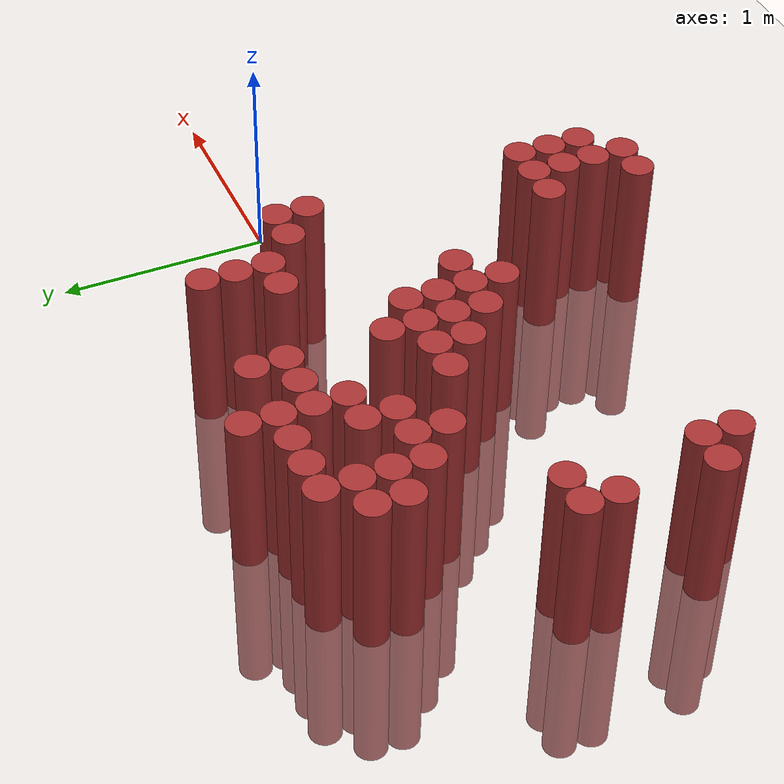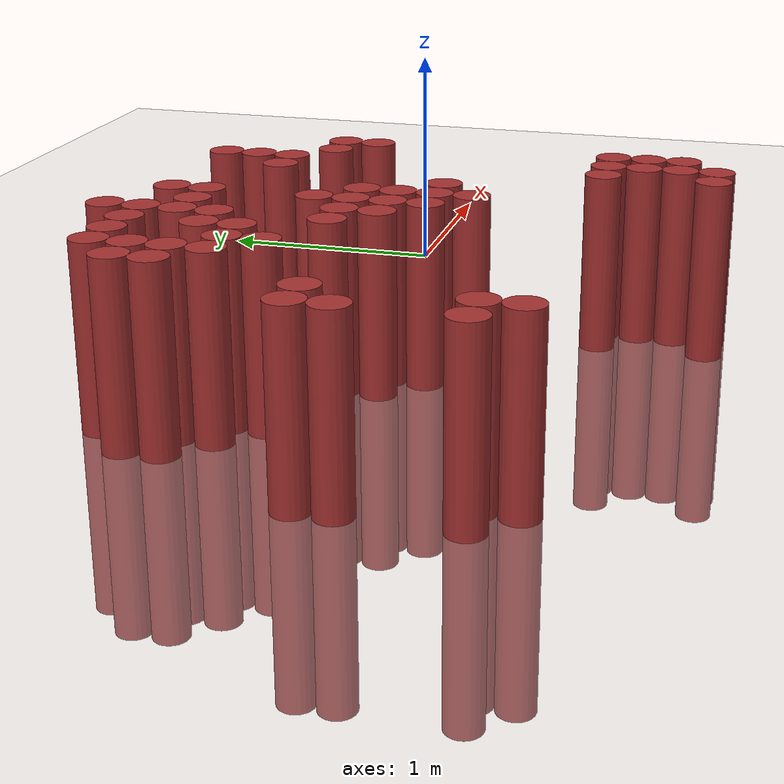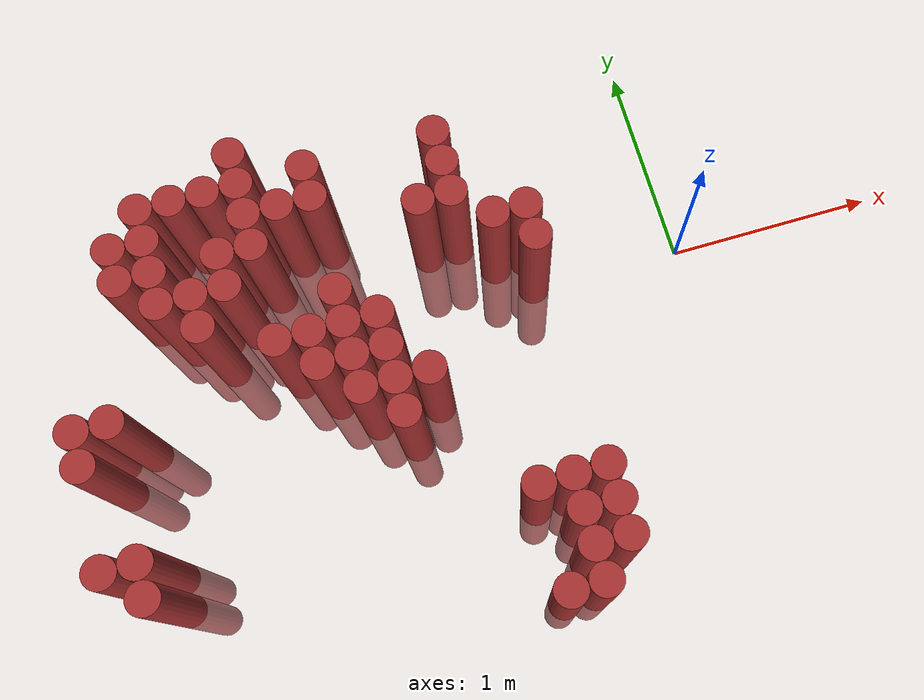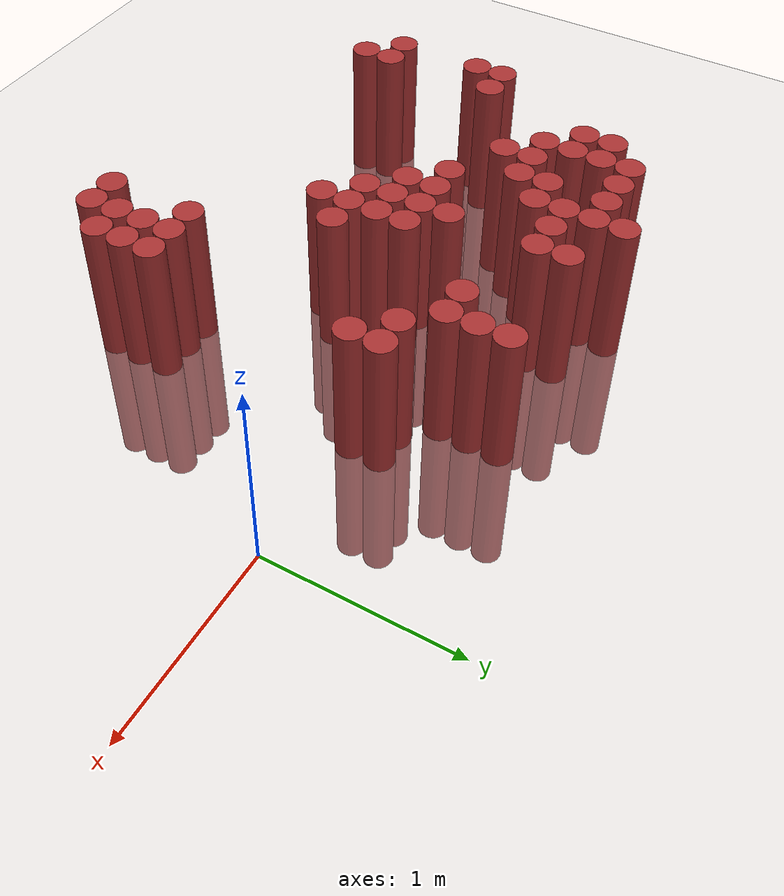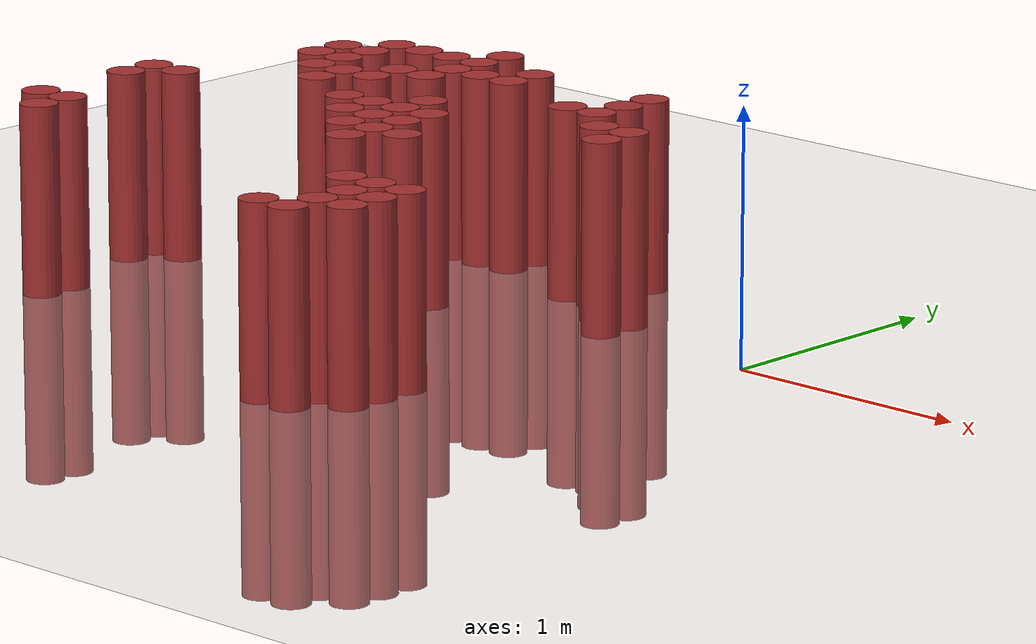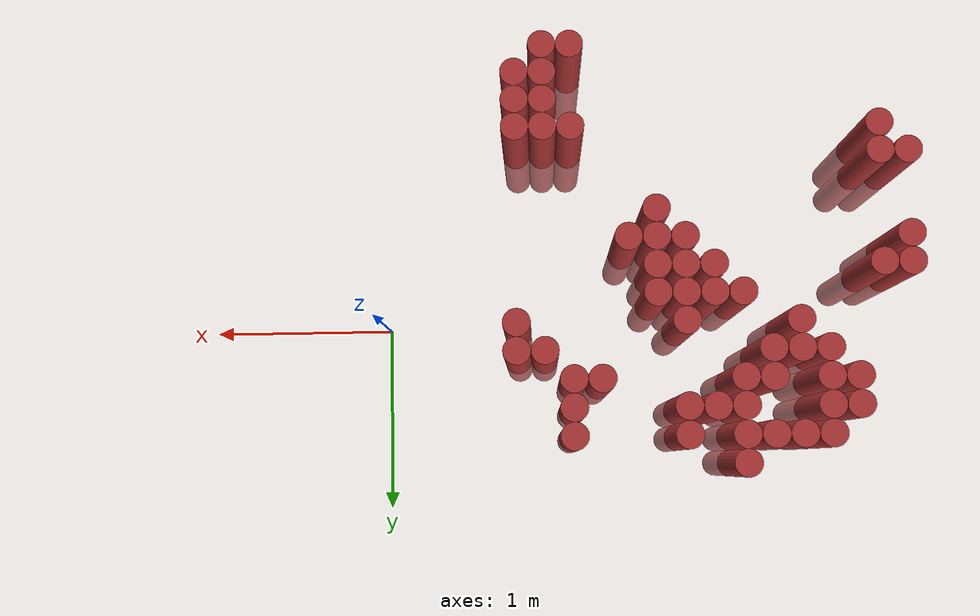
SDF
<sdf version="1.6">
 <world name="default">
  <model name="ground_plane">
   <static>1</static>
   <link name="link">
    <collision name="collision">
     <geometry><plane><normal>0 0 1</normal><size>100 100</size></plane></geometry>
     <surface><friction><ode><mu>100</mu><mu2>50</mu2></ode></friction></surface>
    </collision>
    <visual name="visual">
     <cast_shadows>0</cast_shadows>
     <geometry><plane><normal>0 0 1</normal><size>100 100</size></plane></geometry>
     <material>
      <script><uri>file://media/materials/scripts/gazebo.material</uri><name>Gazebo/Grey</name></script>
     </material>
    </visual>
   </link>
  </model>
  <model name="unit_cylinder_303">
   <static>1</static>
   <pose>-2.825000 -0.875000 0.000000 0.000000 0.000000 0.000000</pose>
   <link name="link">
    <inertial>
     <mass>1</mass>
     <inertia><ixx>0.145833</ixx><ixy>0</ixy><ixz>0</ixz><iyy>0.145833</iyy><iyz>0</iyz><izz>0.125</izz></inertia>
    </inertial>
    <collision name="collision">
     <geometry><cylinder><radius>0.075000</radius><length>1.5</length></cylinder></geometry>
    </collision>
    <visual name="visual">
     <geometry><cylinder><radius>0.075000</radius><length>1.5</length></cylinder></geometry>
     <material>
      <ambient>0.648000 0.192000 0.192000 1</ambient>
      <diffuse>0.648000 0.192000 0.192000 1</diffuse>
     </material>
     <material>
      <script><name>Gazebo/Grey</name><uri>file://media/materials/scripts/gazebo.material</uri></script>
     </material>
    </visual>
   </link>
  </model>
  <model name="unit_cylinder_304">
   <static>1</static>
   <pose>-2.825000 -0.425000 0.000000 0.000000 0.000000 0.000000</pose>
   <link name="link">
    <inertial>
     <mass>1</mass>
     <inertia><ixx>0.145833</ixx><ixy>0</ixy><ixz>0</ixz><iyy>0.145833</iyy><iyz>0</iyz><izz>0.125</izz></inertia>
    </inertial>
    <collision name="collision">
     <geometry><cylinder><radius>0.075000</radius><length>1.5</length></cylinder></geometry>
    </collision>
    <visual name="visual">
     <geometry><cylinder><radius>0.075000</radius><length>1.5</length></cylinder></geometry>
     <material>
      <ambient>0.648000 0.192000 0.192000 1</ambient>
      <diffuse>0.648000 0.192000 0.192000 1</diffuse>
     </material>
     <material>
      <script><name>Gazebo/Grey</name><uri>file://media/materials/scripts/gazebo.material</uri></script>
     </material>
    </visual>
   </link>
  </model>
  <model name="unit_cylinder_305">
   <static>1</static>
   <pose>-2.825000 -0.275000 0.000000 0.000000 0.000000 0.000000</pose>
   <link name="link">
    <inertial>
     <mass>1</mass>
     <inertia><ixx>0.145833</ixx><ixy>0</ixy><ixz>0</ixz><iyy>0.145833</iyy><iyz>0</iyz><izz>0.125</izz></inertia>
    </inertial>
    <collision name="collision">
     <geometry><cylinder><radius>0.075000</radius><length>1.5</length></cylinder></geometry>
    </collision>
    <visual name="visual">
     <geometry><cylinder><radius>0.075000</radius><length>1.5</length></cylinder></geometry>
     <material>
      <ambient>0.648000 0.192000 0.192000 1</ambient>
      <diffuse>0.648000 0.192000 0.192000 1</diffuse>
     </material>
     <material>
      <script><name>Gazebo/Grey</name><uri>file://media/materials/scripts/gazebo.material</uri></script>
     </material>
    </visual>
   </link>
  </model>
  <model name="unit_cylinder_314">
   <static>1</static>
   <pose>-2.675000 -1.025000 0.000000 0.000000 0.000000 0.000000</pose>
   <link name="link">
    <inertial>
     <mass>1</mass>
     <inertia><ixx>0.145833</ixx><ixy>0</ixy><ixz>0</ixz><iyy>0.145833</iyy><iyz>0</iyz><izz>0.125</izz></inertia>
    </inertial>
    <collision name="collision">
     <geometry><cylinder><radius>0.075000</radius><length>1.5</length></cylinder></geometry>
    </collision>
    <visual name="visual">
     <geometry><cylinder><radius>0.075000</radius><length>1.5</length></cylinder></geometry>
     <material>
      <ambient>0.648000 0.192000 0.192000 1</ambient>
      <diffuse>0.648000 0.192000 0.192000 1</diffuse>
     </material>
     <material>
      <script><name>Gazebo/Grey</name><uri>file://media/materials/scripts/gazebo.material</uri></script>
     </material>
    </visual>
   </link>
  </model>
  <model name="unit_cylinder_315">
   <static>1</static>
   <pose>-2.675000 -0.875000 0.000000 0.000000 0.000000 0.000000</pose>
   <link name="link">
    <inertial>
     <mass>1</mass>
     <inertia><ixx>0.145833</ixx><ixy>0</ixy><ixz>0</ixz><iyy>0.145833</iyy><iyz>0</iyz><izz>0.125</izz></inertia>
    </inertial>
    <collision name="collision">
     <geometry><cylinder><radius>0.075000</radius><length>1.5</length></cylinder></geometry>
    </collision>
    <visual name="visual">
     <geometry><cylinder><radius>0.075000</radius><length>1.5</length></cylinder></geometry>
     <material>
      <ambient>0.648000 0.192000 0.192000 1</ambient>
      <diffuse>0.648000 0.192000 0.192000 1</diffuse>
     </material>
     <material>
      <script><name>Gazebo/Grey</name><uri>file://media/materials/scripts/gazebo.material</uri></script>
     </material>
    </visual>
   </link>
  </model>
  <model name="unit_cylinder_316">
   <static>1</static>
   <pose>-2.675000 -0.275000 0.000000 0.000000 0.000000 0.000000</pose>
   <link name="link">
    <inertial>
     <mass>1</mass>
     <inertia><ixx>0.145833</ixx><ixy>0</ixy><ixz>0</ixz><iyy>0.145833</iyy><iyz>0</iyz><izz>0.125</izz></inertia>
    </inertial>
    <collision name="collision">
     <geometry><cylinder><radius>0.075000</radius><length>1.5</length></cylinder></geometry>
    </collision>
    <visual name="visual">
     <geometry><cylinder><radius>0.075000</radius><length>1.5</length></cylinder></geometry>
     <material>
      <ambient>0.648000 0.192000 0.192000 1</ambient>
      <diffuse>0.648000 0.192000 0.192000 1</diffuse>
     </material>
     <material>
      <script><name>Gazebo/Grey</name><uri>file://media/materials/scripts/gazebo.material</uri></script>
     </material>
    </visual>
   </link>
  </model>
  <model name="unit_cylinder_320">
   <static>1</static>
   <pose>-2.525000 0.325000 0.000000 0.000000 0.000000 0.000000</pose>
   <link name="link">
    <inertial>
     <mass>1</mass>
     <inertia><ixx>0.145833</ixx><ixy>0</ixy><ixz>0</ixz><iyy>0.145833</iyy><iyz>0</iyz><izz>0.125</izz></inertia>
    </inertial>
    <collision name="collision">
     <geometry><cylinder><radius>0.075000</radius><length>1.5</length></cylinder></geometry>
    </collision>
    <visual name="visual">
     <geometry><cylinder><radius>0.075000</radius><length>1.5</length></cylinder></geometry>
     <material>
      <ambient>0.648000 0.192000 0.192000 1</ambient>
      <diffuse>0.648000 0.192000 0.192000 1</diffuse>
     </material>
     <material>
      <script><name>Gazebo/Grey</name><uri>file://media/materials/scripts/gazebo.material</uri></script>
     </material>
    </visual>
   </link>
  </model>
  <model name="unit_cylinder_321">
   <static>1</static>
   <pose>-2.525000 0.475000 0.000000 0.000000 0.000000 0.000000</pose>
   <link name="link">
    <inertial>
     <mass>1</mass>
     <inertia><ixx>0.145833</ixx><ixy>0</ixy><ixz>0</ixz><iyy>0.145833</iyy><iyz>0</iyz><izz>0.125</izz></inertia>
    </inertial>
    <collision name="collision">
     <geometry><cylinder><radius>0.075000</radius><length>1.5</length></cylinder></geometry>
    </collision>
    <visual name="visual">
     <geometry><cylinder><radius>0.075000</radius><length>1.5</length></cylinder></geometry>
     <material>
      <ambient>0.648000 0.192000 0.192000 1</ambient>
      <diffuse>0.648000 0.192000 0.192000 1</diffuse>
     </material>
     <material>
      <script><name>Gazebo/Grey</name><uri>file://media/materials/scripts/gazebo.material</uri></script>
     </material>
    </visual>
   </link>
  </model>
  <model name="unit_cylinder_324">
   <static>1</static>
   <pose>-2.375000 0.175000 0.000000 0.000000 0.000000 0.000000</pose>
   <link name="link">
    <inertial>
     <mass>1</mass>
     <inertia><ixx>0.145833</ixx><ixy>0</ixy><ixz>0</ixz><iyy>0.145833</iyy><iyz>0</iyz><izz>0.125</izz></inertia>
    </inertial>
    <collision name="collision">
     <geometry><cylinder><radius>0.075000</radius><length>1.5</length></cylinder></geometry>
    </collision>
    <visual name="visual">
     <geometry><cylinder><radius>0.075000</radius><length>1.5</length></cylinder></geometry>
     <material>
      <ambient>0.648000 0.192000 0.192000 1</ambient>
      <diffuse>0.648000 0.192000 0.192000 1</diffuse>
     </material>
     <material>
      <script><name>Gazebo/Grey</name><uri>file://media/materials/scripts/gazebo.material</uri></script>
     </material>
    </visual>
   </link>
  </model>
  <model name="unit_cylinder_325">
   <static>1</static>
   <pose>-2.375000 0.325000 0.000000 0.000000 0.000000 0.000000</pose>
   <link name="link">
    <inertial>
     <mass>1</mass>
     <inertia><ixx>0.145833</ixx><ixy>0</ixy><ixz>0</ixz><iyy>0.145833</iyy><iyz>0</iyz><izz>0.125</izz></inertia>
    </inertial>
    <collision name="collision">
     <geometry><cylinder><radius>0.075000</radius><length>1.5</length></cylinder></geometry>
    </collision>
    <visual name="visual">
     <geometry><cylinder><radius>0.075000</radius><length>1.5</length></cylinder></geometry>
     <material>
      <ambient>0.648000 0.192000 0.192000 1</ambient>
      <diffuse>0.648000 0.192000 0.192000 1</diffuse>
     </material>
     <material>
      <script><name>Gazebo/Grey</name><uri>file://media/materials/scripts/gazebo.material</uri></script>
     </material>
    </visual>
   </link>
  </model>
  <model name="unit_cylinder_326">
   <static>1</static>
   <pose>-2.375000 0.475000 0.000000 0.000000 0.000000 0.000000</pose>
   <link name="link">
    <inertial>
     <mass>1</mass>
     <inertia><ixx>0.145833</ixx><ixy>0</ixy><ixz>0</ixz><iyy>0.145833</iyy><iyz>0</iyz><izz>0.125</izz></inertia>
    </inertial>
    <collision name="collision">
     <geometry><cylinder><radius>0.075000</radius><length>1.5</length></cylinder></geometry>
    </collision>
    <visual name="visual">
     <geometry><cylinder><radius>0.075000</radius><length>1.5</length></cylinder></geometry>
     <material>
      <ambient>0.648000 0.192000 0.192000 1</ambient>
      <diffuse>0.648000 0.192000 0.192000 1</diffuse>
     </material>
     <material>
      <script><name>Gazebo/Grey</name><uri>file://media/materials/scripts/gazebo.material</uri></script>
     </material>
    </visual>
   </link>
  </model>
  <model name="unit_cylinder_327">
   <static>1</static>
   <pose>-2.375000 0.625000 0.000000 0.000000 0.000000 0.000000</pose>
   <link name="link">
    <inertial>
     <mass>1</mass>
     <inertia><ixx>0.145833</ixx><ixy>0</ixy><ixz>0</ixz><iyy>0.145833</iyy><iyz>0</iyz><izz>0.125</izz></inertia>
    </inertial>
    <collision name="collision">
     <geometry><cylinder><radius>0.075000</radius><length>1.5</length></cylinder></geometry>
    </collision>
    <visual name="visual">
     <geometry><cylinder><radius>0.075000</radius><length>1.5</length></cylinder></geometry>
     <material>
      <ambient>0.648000 0.192000 0.192000 1</ambient>
      <diffuse>0.648000 0.192000 0.192000 1</diffuse>
     </material>
     <material>
      <script><name>Gazebo/Grey</name><uri>file://media/materials/scripts/gazebo.material</uri></script>
     </material>
    </visual>
   </link>
  </model>
  <model name="unit_cylinder_334">
   <static>1</static>
   <pose>-2.225000 0.025000 0.000000 0.000000 0.000000 0.000000</pose>
   <link name="link">
    <inertial>
     <mass>1</mass>
     <inertia><ixx>0.145833</ixx><ixy>0</ixy><ixz>0</ixz><iyy>0.145833</iyy><iyz>0</iyz><izz>0.125</izz></inertia>
    </inertial>
    <collision name="collision">
     <geometry><cylinder><radius>0.075000</radius><length>1.5</length></cylinder></geometry>
    </collision>
    <visual name="visual">
     <geometry><cylinder><radius>0.075000</radius><length>1.5</length></cylinder></geometry>
     <material>
      <ambient>0.648000 0.192000 0.192000 1</ambient>
      <diffuse>0.648000 0.192000 0.192000 1</diffuse>
     </material>
     <material>
      <script><name>Gazebo/Grey</name><uri>file://media/materials/scripts/gazebo.material</uri></script>
     </material>
    </visual>
   </link>
  </model>
  <model name="unit_cylinder_335">
   <static>1</static>
   <pose>-2.225000 0.175000 0.000000 0.000000 0.000000 0.000000</pose>
   <link name="link">
    <inertial>
     <mass>1</mass>
     <inertia><ixx>0.145833</ixx><ixy>0</ixy><ixz>0</ixz><iyy>0.145833</iyy><iyz>0</iyz><izz>0.125</izz></inertia>
    </inertial>
    <collision name="collision">
     <geometry><cylinder><radius>0.075000</radius><length>1.5</length></cylinder></geometry>
    </collision>
    <visual name="visual">
     <geometry><cylinder><radius>0.075000</radius><length>1.5</length></cylinder></geometry>
     <material>
      <ambient>0.648000 0.192000 0.192000 1</ambient>
      <diffuse>0.648000 0.192000 0.192000 1</diffuse>
     </material>
     <material>
      <script><name>Gazebo/Grey</name><uri>file://media/materials/scripts/gazebo.material</uri></script>
     </material>
    </visual>
   </link>
  </model>
  <model name="unit_cylinder_336">
   <static>1</static>
   <pose>-2.225000 0.625000 0.000000 0.000000 0.000000 0.000000</pose>
   <link name="link">
    <inertial>
     <mass>1</mass>
     <inertia><ixx>0.145833</ixx><ixy>0</ixy><ixz>0</ixz><iyy>0.145833</iyy><iyz>0</iyz><izz>0.125</izz></inertia>
    </inertial>
    <collision name="collision">
     <geometry><cylinder><radius>0.075000</radius><length>1.5</length></cylinder></geometry>
    </collision>
    <visual name="visual">
     <geometry><cylinder><radius>0.075000</radius><length>1.5</length></cylinder></geometry>
     <material>
      <ambient>0.648000 0.192000 0.192000 1</ambient>
      <diffuse>0.648000 0.192000 0.192000 1</diffuse>
     </material>
     <material>
      <script><name>Gazebo/Grey</name><uri>file://media/materials/scripts/gazebo.material</uri></script>
     </material>
    </visual>
   </link>
  </model>
  <model name="unit_cylinder_342">
   <static>1</static>
   <pose>-2.075000 0.175000 0.000000 0.000000 0.000000 0.000000</pose>
   <link name="link">
    <inertial>
     <mass>1</mass>
     <inertia><ixx>0.145833</ixx><ixy>0</ixy><ixz>0</ixz><iyy>0.145833</iyy><iyz>0</iyz><izz>0.125</izz></inertia>
    </inertial>
    <collision name="collision">
     <geometry><cylinder><radius>0.075000</radius><length>1.5</length></cylinder></geometry>
    </collision>
    <visual name="visual">
     <geometry><cylinder><radius>0.075000</radius><length>1.5</length></cylinder></geometry>
     <material>
      <ambient>0.648000 0.192000 0.192000 1</ambient>
      <diffuse>0.648000 0.192000 0.192000 1</diffuse>
     </material>
     <material>
      <script><name>Gazebo/Grey</name><uri>file://media/materials/scripts/gazebo.material</uri></script>
     </material>
    </visual>
   </link>
  </model>
  <model name="unit_cylinder_343">
   <static>1</static>
   <pose>-2.075000 0.325000 0.000000 0.000000 0.000000 0.000000</pose>
   <link name="link">
    <inertial>
     <mass>1</mass>
     <inertia><ixx>0.145833</ixx><ixy>0</ixy><ixz>0</ixz><iyy>0.145833</iyy><iyz>0</iyz><izz>0.125</izz></inertia>
    </inertial>
    <collision name="collision">
     <geometry><cylinder><radius>0.075000</radius><length>1.5</length></cylinder></geometry>
    </collision>
    <visual name="visual">
     <geometry><cylinder><radius>0.075000</radius><length>1.5</length></cylinder></geometry>
     <material>
      <ambient>0.648000 0.192000 0.192000 1</ambient>
      <diffuse>0.648000 0.192000 0.192000 1</diffuse>
     </material>
     <material>
      <script><name>Gazebo/Grey</name><uri>file://media/materials/scripts/gazebo.material</uri></script>
     </material>
    </visual>
   </link>
  </model>
  <model name="unit_cylinder_344">
   <static>1</static>
   <pose>-2.075000 0.625000 0.000000 0.000000 0.000000 0.000000</pose>
   <link name="link">
    <inertial>
     <mass>1</mass>
     <inertia><ixx>0.145833</ixx><ixy>0</ixy><ixz>0</ixz><iyy>0.145833</iyy><iyz>0</iyz><izz>0.125</izz></inertia>
    </inertial>
    <collision name="collision">
     <geometry><cylinder><radius>0.075000</radius><length>1.5</length></cylinder></geometry>
    </collision>
    <visual name="visual">
     <geometry><cylinder><radius>0.075000</radius><length>1.5</length></cylinder></geometry>
     <material>
      <ambient>0.648000 0.192000 0.192000 1</ambient>
      <diffuse>0.648000 0.192000 0.192000 1</diffuse>
     </material>
     <material>
      <script><name>Gazebo/Grey</name><uri>file://media/materials/scripts/gazebo.material</uri></script>
     </material>
    </visual>
   </link>
  </model>
  <model name="unit_cylinder_352">
   <static>1</static>
   <pose>-1.925000 -0.125000 0.000000 0.000000 0.000000 0.000000</pose>
   <link name="link">
    <inertial>
     <mass>1</mass>
     <inertia><ixx>0.145833</ixx><ixy>0</ixy><ixz>0</ixz><iyy>0.145833</iyy><iyz>0</iyz><izz>0.125</izz></inertia>
    </inertial>
    <collision name="collision">
     <geometry><cylinder><radius>0.075000</radius><length>1.5</length></cylinder></geometry>
    </collision>
    <visual name="visual">
     <geometry><cylinder><radius>0.075000</radius><length>1.5</length></cylinder></geometry>
     <material>
      <ambient>0.648000 0.192000 0.192000 1</ambient>
      <diffuse>0.648000 0.192000 0.192000 1</diffuse>
     </material>
     <material>
      <script><name>Gazebo/Grey</name><uri>file://media/materials/scripts/gazebo.material</uri></script>
     </material>
    </visual>
   </link>
  </model>
  <model name="unit_cylinder_353">
   <static>1</static>
   <pose>-1.925000 0.325000 0.000000 0.000000 0.000000 0.000000</pose>
   <link name="link">
    <inertial>
     <mass>1</mass>
     <inertia><ixx>0.145833</ixx><ixy>0</ixy><ixz>0</ixz><iyy>0.145833</iyy><iyz>0</iyz><izz>0.125</izz></inertia>
    </inertial>
    <collision name="collision">
     <geometry><cylinder><radius>0.075000</radius><length>1.5</length></cylinder></geometry>
    </collision>
    <visual name="visual">
     <geometry><cylinder><radius>0.075000</radius><length>1.5</length></cylinder></geometry>
     <material>
      <ambient>0.648000 0.192000 0.192000 1</ambient>
      <diffuse>0.648000 0.192000 0.192000 1</diffuse>
     </material>
     <material>
      <script><name>Gazebo/Grey</name><uri>file://media/materials/scripts/gazebo.material</uri></script>
     </material>
    </visual>
   </link>
  </model>
  <model name="unit_cylinder_354">
   <static>1</static>
   <pose>-1.925000 0.475000 0.000000 0.000000 0.000000 0.000000</pose>
   <link name="link">
    <inertial>
     <mass>1</mass>
     <inertia><ixx>0.145833</ixx><ixy>0</ixy><ixz>0</ixz><iyy>0.145833</iyy><iyz>0</iyz><izz>0.125</izz></inertia>
    </inertial>
    <collision name="collision">
     <geometry><cylinder><radius>0.075000</radius><length>1.5</length></cylinder></geometry>
    </collision>
    <visual name="visual">
     <geometry><cylinder><radius>0.075000</radius><length>1.5</length></cylinder></geometry>
     <material>
      <ambient>0.648000 0.192000 0.192000 1</ambient>
      <diffuse>0.648000 0.192000 0.192000 1</diffuse>
     </material>
     <material>
      <script><name>Gazebo/Grey</name><uri>file://media/materials/scripts/gazebo.material</uri></script>
     </material>
    </visual>
   </link>
  </model>
  <model name="unit_cylinder_355">
   <static>1</static>
   <pose>-1.925000 0.625000 0.000000 0.000000 0.000000 0.000000</pose>
   <link name="link">
    <inertial>
     <mass>1</mass>
     <inertia><ixx>0.145833</ixx><ixy>0</ixy><ixz>0</ixz><iyy>0.145833</iyy><iyz>0</iyz><izz>0.125</izz></inertia>
    </inertial>
    <collision name="collision">
     <geometry><cylinder><radius>0.075000</radius><length>1.5</length></cylinder></geometry>
    </collision>
    <visual name="visual">
     <geometry><cylinder><radius>0.075000</radius><length>1.5</length></cylinder></geometry>
     <material>
      <ambient>0.648000 0.192000 0.192000 1</ambient>
      <diffuse>0.648000 0.192000 0.192000 1</diffuse>
     </material>
     <material>
      <script><name>Gazebo/Grey</name><uri>file://media/materials/scripts/gazebo.material</uri></script>
     </material>
    </visual>
   </link>
  </model>
  <model name="unit_cylinder_356">
   <static>1</static>
   <pose>-1.925000 0.775000 0.000000 0.000000 0.000000 0.000000</pose>
   <link name="link">
    <inertial>
     <mass>1</mass>
     <inertia><ixx>0.145833</ixx><ixy>0</ixy><ixz>0</ixz><iyy>0.145833</iyy><iyz>0</iyz><izz>0.125</izz></inertia>
    </inertial>
    <collision name="collision">
     <geometry><cylinder><radius>0.075000</radius><length>1.5</length></cylinder></geometry>
    </collision>
    <visual name="visual">
     <geometry><cylinder><radius>0.075000</radius><length>1.5</length></cylinder></geometry>
     <material>
      <ambient>0.648000 0.192000 0.192000 1</ambient>
      <diffuse>0.648000 0.192000 0.192000 1</diffuse>
     </material>
     <material>
      <script><name>Gazebo/Grey</name><uri>file://media/materials/scripts/gazebo.material</uri></script>
     </material>
    </visual>
   </link>
  </model>
  <model name="unit_cylinder_361">
   <static>1</static>
   <pose>-1.775000 -0.275000 0.000000 0.000000 0.000000 0.000000</pose>
   <link name="link">
    <inertial>
     <mass>1</mass>
     <inertia><ixx>0.145833</ixx><ixy>0</ixy><ixz>0</ixz><iyy>0.145833</iyy><iyz>0</iyz><izz>0.125</izz></inertia>
    </inertial>
    <collision name="collision">
     <geometry><cylinder><radius>0.075000</radius><length>1.5</length></cylinder></geometry>
    </collision>
    <visual name="visual">
     <geometry><cylinder><radius>0.075000</radius><length>1.5</length></cylinder></geometry>
     <material>
      <ambient>0.648000 0.192000 0.192000 1</ambient>
      <diffuse>0.648000 0.192000 0.192000 1</diffuse>
     </material>
     <material>
      <script><name>Gazebo/Grey</name><uri>file://media/materials/scripts/gazebo.material</uri></script>
     </material>
    </visual>
   </link>
  </model>
  <model name="unit_cylinder_362">
   <static>1</static>
   <pose>-1.775000 -0.125000 0.000000 0.000000 0.000000 0.000000</pose>
   <link name="link">
    <inertial>
     <mass>1</mass>
     <inertia><ixx>0.145833</ixx><ixy>0</ixy><ixz>0</ixz><iyy>0.145833</iyy><iyz>0</iyz><izz>0.125</izz></inertia>
    </inertial>
    <collision name="collision">
     <geometry><cylinder><radius>0.075000</radius><length>1.5</length></cylinder></geometry>
    </collision>
    <visual name="visual">
     <geometry><cylinder><radius>0.075000</radius><length>1.5</length></cylinder></geometry>
     <material>
      <ambient>0.648000 0.192000 0.192000 1</ambient>
      <diffuse>0.648000 0.192000 0.192000 1</diffuse>
     </material>
     <material>
      <script><name>Gazebo/Grey</name><uri>file://media/materials/scripts/gazebo.material</uri></script>
     </material>
    </visual>
   </link>
  </model>
  <model name="unit_cylinder_363">
   <static>1</static>
   <pose>-1.775000 0.475000 0.000000 0.000000 0.000000 0.000000</pose>
   <link name="link">
    <inertial>
     <mass>1</mass>
     <inertia><ixx>0.145833</ixx><ixy>0</ixy><ixz>0</ixz><iyy>0.145833</iyy><iyz>0</iyz><izz>0.125</izz></inertia>
    </inertial>
    <collision name="collision">
     <geometry><cylinder><radius>0.075000</radius><length>1.5</length></cylinder></geometry>
    </collision>
    <visual name="visual">
     <geometry><cylinder><radius>0.075000</radius><length>1.5</length></cylinder></geometry>
     <material>
      <ambient>0.648000 0.192000 0.192000 1</ambient>
      <diffuse>0.648000 0.192000 0.192000 1</diffuse>
     </material>
     <material>
      <script><name>Gazebo/Grey</name><uri>file://media/materials/scripts/gazebo.material</uri></script>
     </material>
    </visual>
   </link>
  </model>
  <model name="unit_cylinder_369">
   <static>1</static>
   <pose>-1.625000 -0.425000 0.000000 0.000000 0.000000 0.000000</pose>
   <link name="link">
    <inertial>
     <mass>1</mass>
     <inertia><ixx>0.145833</ixx><ixy>0</ixy><ixz>0</ixz><iyy>0.145833</iyy><iyz>0</iyz><izz>0.125</izz></inertia>
    </inertial>
    <collision name="collision">
     <geometry><cylinder><radius>0.075000</radius><length>1.5</length></cylinder></geometry>
    </collision>
    <visual name="visual">
     <geometry><cylinder><radius>0.075000</radius><length>1.5</length></cylinder></geometry>
     <material>
      <ambient>0.648000 0.192000 0.192000 1</ambient>
      <diffuse>0.648000 0.192000 0.192000 1</diffuse>
     </material>
     <material>
      <script><name>Gazebo/Grey</name><uri>file://media/materials/scripts/gazebo.material</uri></script>
     </material>
    </visual>
   </link>
  </model>
  <model name="unit_cylinder_370">
   <static>1</static>
   <pose>-1.625000 -0.275000 0.000000 0.000000 0.000000 0.000000</pose>
   <link name="link">
    <inertial>
     <mass>1</mass>
     <inertia><ixx>0.145833</ixx><ixy>0</ixy><ixz>0</ixz><iyy>0.145833</iyy><iyz>0</iyz><izz>0.125</izz></inertia>
    </inertial>
    <collision name="collision">
     <geometry><cylinder><radius>0.075000</radius><length>1.5</length></cylinder></geometry>
    </collision>
    <visual name="visual">
     <geometry><cylinder><radius>0.075000</radius><length>1.5</length></cylinder></geometry>
     <material>
      <ambient>0.648000 0.192000 0.192000 1</ambient>
      <diffuse>0.648000 0.192000 0.192000 1</diffuse>
     </material>
     <material>
      <script><name>Gazebo/Grey</name><uri>file://media/materials/scripts/gazebo.material</uri></script>
     </material>
    </visual>
   </link>
  </model>
  <model name="unit_cylinder_371">
   <static>1</static>
   <pose>-1.625000 -0.125000 0.000000 0.000000 0.000000 0.000000</pose>
   <link name="link">
    <inertial>
     <mass>1</mass>
     <inertia><ixx>0.145833</ixx><ixy>0</ixy><ixz>0</ixz><iyy>0.145833</iyy><iyz>0</iyz><izz>0.125</izz></inertia>
    </inertial>
    <collision name="collision">
     <geometry><cylinder><radius>0.075000</radius><length>1.5</length></cylinder></geometry>
    </collision>
    <visual name="visual">
     <geometry><cylinder><radius>0.075000</radius><length>1.5</length></cylinder></geometry>
     <material>
      <ambient>0.648000 0.192000 0.192000 1</ambient>
      <diffuse>0.648000 0.192000 0.192000 1</diffuse>
     </material>
     <material>
      <script><name>Gazebo/Grey</name><uri>file://media/materials/scripts/gazebo.material</uri></script>
     </material>
    </visual>
   </link>
  </model>
  <model name="unit_cylinder_372">
   <static>1</static>
   <pose>-1.625000 0.025000 0.000000 0.000000 0.000000 0.000000</pose>
   <link name="link">
    <inertial>
     <mass>1</mass>
     <inertia><ixx>0.145833</ixx><ixy>0</ixy><ixz>0</ixz><iyy>0.145833</iyy><iyz>0</iyz><izz>0.125</izz></inertia>
    </inertial>
    <collision name="collision">
     <geometry><cylinder><radius>0.075000</radius><length>1.5</length></cylinder></geometry>
    </collision>
    <visual name="visual">
     <geometry><cylinder><radius>0.075000</radius><length>1.5</length></cylinder></geometry>
     <material>
      <ambient>0.648000 0.192000 0.192000 1</ambient>
      <diffuse>0.648000 0.192000 0.192000 1</diffuse>
     </material>
     <material>
      <script><name>Gazebo/Grey</name><uri>file://media/materials/scripts/gazebo.material</uri></script>
     </material>
    </visual>
   </link>
  </model>
  <model name="unit_cylinder_373">
   <static>1</static>
   <pose>-1.625000 0.475000 0.000000 0.000000 0.000000 0.000000</pose>
   <link name="link">
    <inertial>
     <mass>1</mass>
     <inertia><ixx>0.145833</ixx><ixy>0</ixy><ixz>0</ixz><iyy>0.145833</iyy><iyz>0</iyz><izz>0.125</izz></inertia>
    </inertial>
    <collision name="collision">
     <geometry><cylinder><radius>0.075000</radius><length>1.5</length></cylinder></geometry>
    </collision>
    <visual name="visual">
     <geometry><cylinder><radius>0.075000</radius><length>1.5</length></cylinder></geometry>
     <material>
      <ambient>0.648000 0.192000 0.192000 1</ambient>
      <diffuse>0.648000 0.192000 0.192000 1</diffuse>
     </material>
     <material>
      <script><name>Gazebo/Grey</name><uri>file://media/materials/scripts/gazebo.material</uri></script>
     </material>
    </visual>
   </link>
  </model>
  <model name="unit_cylinder_374">
   <static>1</static>
   <pose>-1.625000 0.625000 0.000000 0.000000 0.000000 0.000000</pose>
   <link name="link">
    <inertial>
     <mass>1</mass>
     <inertia><ixx>0.145833</ixx><ixy>0</ixy><ixz>0</ixz><iyy>0.145833</iyy><iyz>0</iyz><izz>0.125</izz></inertia>
    </inertial>
    <collision name="collision">
     <geometry><cylinder><radius>0.075000</radius><length>1.5</length></cylinder></geometry>
    </collision>
    <visual name="visual">
     <geometry><cylinder><radius>0.075000</radius><length>1.5</length></cylinder></geometry>
     <material>
      <ambient>0.648000 0.192000 0.192000 1</ambient>
      <diffuse>0.648000 0.192000 0.192000 1</diffuse>
     </material>
     <material>
      <script><name>Gazebo/Grey</name><uri>file://media/materials/scripts/gazebo.material</uri></script>
     </material>
    </visual>
   </link>
  </model>
  <model name="unit_cylinder_378">
   <static>1</static>
   <pose>-1.475000 -0.575000 0.000000 0.000000 0.000000 0.000000</pose>
   <link name="link">
    <inertial>
     <mass>1</mass>
     <inertia><ixx>0.145833</ixx><ixy>0</ixy><ixz>0</ixz><iyy>0.145833</iyy><iyz>0</iyz><izz>0.125</izz></inertia>
    </inertial>
    <collision name="collision">
     <geometry><cylinder><radius>0.075000</radius><length>1.5</length></cylinder></geometry>
    </collision>
    <visual name="visual">
     <geometry><cylinder><radius>0.075000</radius><length>1.5</length></cylinder></geometry>
     <material>
      <ambient>0.648000 0.192000 0.192000 1</ambient>
      <diffuse>0.648000 0.192000 0.192000 1</diffuse>
     </material>
     <material>
      <script><name>Gazebo/Grey</name><uri>file://media/materials/scripts/gazebo.material</uri></script>
     </material>
    </visual>
   </link>
  </model>
  <model name="unit_cylinder_379">
   <static>1</static>
   <pose>-1.475000 -0.425000 0.000000 0.000000 0.000000 0.000000</pose>
   <link name="link">
    <inertial>
     <mass>1</mass>
     <inertia><ixx>0.145833</ixx><ixy>0</ixy><ixz>0</ixz><iyy>0.145833</iyy><iyz>0</iyz><izz>0.125</izz></inertia>
    </inertial>
    <collision name="collision">
     <geometry><cylinder><radius>0.075000</radius><length>1.5</length></cylinder></geometry>
    </collision>
    <visual name="visual">
     <geometry><cylinder><radius>0.075000</radius><length>1.5</length></cylinder></geometry>
     <material>
      <ambient>0.648000 0.192000 0.192000 1</ambient>
      <diffuse>0.648000 0.192000 0.192000 1</diffuse>
     </material>
     <material>
      <script><name>Gazebo/Grey</name><uri>file://media/materials/scripts/gazebo.material</uri></script>
     </material>
    </visual>
   </link>
  </model>
  <model name="unit_cylinder_380">
   <static>1</static>
   <pose>-1.475000 -0.275000 0.000000 0.000000 0.000000 0.000000</pose>
   <link name="link">
    <inertial>
     <mass>1</mass>
     <inertia><ixx>0.145833</ixx><ixy>0</ixy><ixz>0</ixz><iyy>0.145833</iyy><iyz>0</iyz><izz>0.125</izz></inertia>
    </inertial>
    <collision name="collision">
     <geometry><cylinder><radius>0.075000</radius><length>1.5</length></cylinder></geometry>
    </collision>
    <visual name="visual">
     <geometry><cylinder><radius>0.075000</radius><length>1.5</length></cylinder></geometry>
     <material>
      <ambient>0.648000 0.192000 0.192000 1</ambient>
      <diffuse>0.648000 0.192000 0.192000 1</diffuse>
     </material>
     <material>
      <script><name>Gazebo/Grey</name><uri>file://media/materials/scripts/gazebo.material</uri></script>
     </material>
    </visual>
   </link>
  </model>
  <model name="unit_cylinder_381">
   <static>1</static>
   <pose>-1.475000 -0.125000 0.000000 0.000000 0.000000 0.000000</pose>
   <link name="link">
    <inertial>
     <mass>1</mass>
     <inertia><ixx>0.145833</ixx><ixy>0</ixy><ixz>0</ixz><iyy>0.145833</iyy><iyz>0</iyz><izz>0.125</izz></inertia>
    </inertial>
    <collision name="collision">
     <geometry><cylinder><radius>0.075000</radius><length>1.5</length></cylinder></geometry>
    </collision>
    <visual name="visual">
     <geometry><cylinder><radius>0.075000</radius><length>1.5</length></cylinder></geometry>
     <material>
      <ambient>0.648000 0.192000 0.192000 1</ambient>
      <diffuse>0.648000 0.192000 0.192000 1</diffuse>
     </material>
     <material>
      <script><name>Gazebo/Grey</name><uri>file://media/materials/scripts/gazebo.material</uri></script>
     </material>
    </visual>
   </link>
  </model>
  <model name="unit_cylinder_383">
   <static>1</static>
   <pose>-1.325000 -0.425000 0.000000 0.000000 0.000000 0.000000</pose>
   <link name="link">
    <inertial>
     <mass>1</mass>
     <inertia><ixx>0.145833</ixx><ixy>0</ixy><ixz>0</ixz><iyy>0.145833</iyy><iyz>0</iyz><izz>0.125</izz></inertia>
    </inertial>
    <collision name="collision">
     <geometry><cylinder><radius>0.075000</radius><length>1.5</length></cylinder></geometry>
    </collision>
    <visual name="visual">
     <geometry><cylinder><radius>0.075000</radius><length>1.5</length></cylinder></geometry>
     <material>
      <ambient>0.648000 0.192000 0.192000 1</ambient>
      <diffuse>0.648000 0.192000 0.192000 1</diffuse>
     </material>
     <material>
      <script><name>Gazebo/Grey</name><uri>file://media/materials/scripts/gazebo.material</uri></script>
     </material>
    </visual>
   </link>
  </model>
  <model name="unit_cylinder_384">
   <static>1</static>
   <pose>-1.175000 0.325000 0.000000 0.000000 0.000000 0.000000</pose>
   <link name="link">
    <inertial>
     <mass>1</mass>
     <inertia><ixx>0.145833</ixx><ixy>0</ixy><ixz>0</ixz><iyy>0.145833</iyy><iyz>0</iyz><izz>0.125</izz></inertia>
    </inertial>
    <collision name="collision">
     <geometry><cylinder><radius>0.075000</radius><length>1.5</length></cylinder></geometry>
    </collision>
    <visual name="visual">
     <geometry><cylinder><radius>0.075000</radius><length>1.5</length></cylinder></geometry>
     <material>
      <ambient>0.648000 0.192000 0.192000 1</ambient>
      <diffuse>0.648000 0.192000 0.192000 1</diffuse>
     </material>
     <material>
      <script><name>Gazebo/Grey</name><uri>file://media/materials/scripts/gazebo.material</uri></script>
     </material>
    </visual>
   </link>
  </model>
  <model name="unit_cylinder_386">
   <static>1</static>
   <pose>-1.025000 -1.475000 0.000000 0.000000 0.000000 0.000000</pose>
   <link name="link">
    <inertial>
     <mass>1</mass>
     <inertia><ixx>0.145833</ixx><ixy>0</ixy><ixz>0</ixz><iyy>0.145833</iyy><iyz>0</iyz><izz>0.125</izz></inertia>
    </inertial>
    <collision name="collision">
     <geometry><cylinder><radius>0.075000</radius><length>1.5</length></cylinder></geometry>
    </collision>
    <visual name="visual">
     <geometry><cylinder><radius>0.075000</radius><length>1.5</length></cylinder></geometry>
     <material>
      <ambient>0.648000 0.192000 0.192000 1</ambient>
      <diffuse>0.648000 0.192000 0.192000 1</diffuse>
     </material>
     <material>
      <script><name>Gazebo/Grey</name><uri>file://media/materials/scripts/gazebo.material</uri></script>
     </material>
    </visual>
   </link>
  </model>
  <model name="unit_cylinder_387">
   <static>1</static>
   <pose>-1.025000 -1.025000 0.000000 0.000000 0.000000 0.000000</pose>
   <link name="link">
    <inertial>
     <mass>1</mass>
     <inertia><ixx>0.145833</ixx><ixy>0</ixy><ixz>0</ixz><iyy>0.145833</iyy><iyz>0</iyz><izz>0.125</izz></inertia>
    </inertial>
    <collision name="collision">
     <geometry><cylinder><radius>0.075000</radius><length>1.5</length></cylinder></geometry>
    </collision>
    <visual name="visual">
     <geometry><cylinder><radius>0.075000</radius><length>1.5</length></cylinder></geometry>
     <material>
      <ambient>0.648000 0.192000 0.192000 1</ambient>
      <diffuse>0.648000 0.192000 0.192000 1</diffuse>
     </material>
     <material>
      <script><name>Gazebo/Grey</name><uri>file://media/materials/scripts/gazebo.material</uri></script>
     </material>
    </visual>
   </link>
  </model>
  <model name="unit_cylinder_388">
   <static>1</static>
   <pose>-1.025000 0.325000 0.000000 0.000000 0.000000 0.000000</pose>
   <link name="link">
    <inertial>
     <mass>1</mass>
     <inertia><ixx>0.145833</ixx><ixy>0</ixy><ixz>0</ixz><iyy>0.145833</iyy><iyz>0</iyz><izz>0.125</izz></inertia>
    </inertial>
    <collision name="collision">
     <geometry><cylinder><radius>0.075000</radius><length>1.5</length></cylinder></geometry>
    </collision>
    <visual name="visual">
     <geometry><cylinder><radius>0.075000</radius><length>1.5</length></cylinder></geometry>
     <material>
      <ambient>0.648000 0.192000 0.192000 1</ambient>
      <diffuse>0.648000 0.192000 0.192000 1</diffuse>
     </material>
     <material>
      <script><name>Gazebo/Grey</name><uri>file://media/materials/scripts/gazebo.material</uri></script>
     </material>
    </visual>
   </link>
  </model>
  <model name="unit_cylinder_389">
   <static>1</static>
   <pose>-1.025000 0.475000 0.000000 0.000000 0.000000 0.000000</pose>
   <link name="link">
    <inertial>
     <mass>1</mass>
     <inertia><ixx>0.145833</ixx><ixy>0</ixy><ixz>0</ixz><iyy>0.145833</iyy><iyz>0</iyz><izz>0.125</izz></inertia>
    </inertial>
    <collision name="collision">
     <geometry><cylinder><radius>0.075000</radius><length>1.5</length></cylinder></geometry>
    </collision>
    <visual name="visual">
     <geometry><cylinder><radius>0.075000</radius><length>1.5</length></cylinder></geometry>
     <material>
      <ambient>0.648000 0.192000 0.192000 1</ambient>
      <diffuse>0.648000 0.192000 0.192000 1</diffuse>
     </material>
     <material>
      <script><name>Gazebo/Grey</name><uri>file://media/materials/scripts/gazebo.material</uri></script>
     </material>
    </visual>
   </link>
  </model>
  <model name="unit_cylinder_390">
   <static>1</static>
   <pose>-1.025000 0.625000 0.000000 0.000000 0.000000 0.000000</pose>
   <link name="link">
    <inertial>
     <mass>1</mass>
     <inertia><ixx>0.145833</ixx><ixy>0</ixy><ixz>0</ixz><iyy>0.145833</iyy><iyz>0</iyz><izz>0.125</izz></inertia>
    </inertial>
    <collision name="collision">
     <geometry><cylinder><radius>0.075000</radius><length>1.5</length></cylinder></geometry>
    </collision>
    <visual name="visual">
     <geometry><cylinder><radius>0.075000</radius><length>1.5</length></cylinder></geometry>
     <material>
      <ambient>0.648000 0.192000 0.192000 1</ambient>
      <diffuse>0.648000 0.192000 0.192000 1</diffuse>
     </material>
     <material>
      <script><name>Gazebo/Grey</name><uri>file://media/materials/scripts/gazebo.material</uri></script>
     </material>
    </visual>
   </link>
  </model>
  <model name="unit_cylinder_393">
   <static>1</static>
   <pose>-0.875000 -1.475000 0.000000 0.000000 0.000000 0.000000</pose>
   <link name="link">
    <inertial>
     <mass>1</mass>
     <inertia><ixx>0.145833</ixx><ixy>0</ixy><ixz>0</ixz><iyy>0.145833</iyy><iyz>0</iyz><izz>0.125</izz></inertia>
    </inertial>
    <collision name="collision">
     <geometry><cylinder><radius>0.075000</radius><length>1.5</length></cylinder></geometry>
    </collision>
    <visual name="visual">
     <geometry><cylinder><radius>0.075000</radius><length>1.5</length></cylinder></geometry>
     <material>
      <ambient>0.648000 0.192000 0.192000 1</ambient>
      <diffuse>0.648000 0.192000 0.192000 1</diffuse>
     </material>
     <material>
      <script><name>Gazebo/Grey</name><uri>file://media/materials/scripts/gazebo.material</uri></script>
     </material>
    </visual>
   </link>
  </model>
  <model name="unit_cylinder_394">
   <static>1</static>
   <pose>-0.875000 -1.325000 0.000000 0.000000 0.000000 0.000000</pose>
   <link name="link">
    <inertial>
     <mass>1</mass>
     <inertia><ixx>0.145833</ixx><ixy>0</ixy><ixz>0</ixz><iyy>0.145833</iyy><iyz>0</iyz><izz>0.125</izz></inertia>
    </inertial>
    <collision name="collision">
     <geometry><cylinder><radius>0.075000</radius><length>1.5</length></cylinder></geometry>
    </collision>
    <visual name="visual">
     <geometry><cylinder><radius>0.075000</radius><length>1.5</length></cylinder></geometry>
     <material>
      <ambient>0.648000 0.192000 0.192000 1</ambient>
      <diffuse>0.648000 0.192000 0.192000 1</diffuse>
     </material>
     <material>
      <script><name>Gazebo/Grey</name><uri>file://media/materials/scripts/gazebo.material</uri></script>
     </material>
    </visual>
   </link>
  </model>
  <model name="unit_cylinder_395">
   <static>1</static>
   <pose>-0.875000 -1.175000 0.000000 0.000000 0.000000 0.000000</pose>
   <link name="link">
    <inertial>
     <mass>1</mass>
     <inertia><ixx>0.145833</ixx><ixy>0</ixy><ixz>0</ixz><iyy>0.145833</iyy><iyz>0</iyz><izz>0.125</izz></inertia>
    </inertial>
    <collision name="collision">
     <geometry><cylinder><radius>0.075000</radius><length>1.5</length></cylinder></geometry>
    </collision>
    <visual name="visual">
     <geometry><cylinder><radius>0.075000</radius><length>1.5</length></cylinder></geometry>
     <material>
      <ambient>0.648000 0.192000 0.192000 1</ambient>
      <diffuse>0.648000 0.192000 0.192000 1</diffuse>
     </material>
     <material>
      <script><name>Gazebo/Grey</name><uri>file://media/materials/scripts/gazebo.material</uri></script>
     </material>
    </visual>
   </link>
  </model>
  <model name="unit_cylinder_396">
   <static>1</static>
   <pose>-0.875000 -1.025000 0.000000 0.000000 0.000000 0.000000</pose>
   <link name="link">
    <inertial>
     <mass>1</mass>
     <inertia><ixx>0.145833</ixx><ixy>0</ixy><ixz>0</ixz><iyy>0.145833</iyy><iyz>0</iyz><izz>0.125</izz></inertia>
    </inertial>
    <collision name="collision">
     <geometry><cylinder><radius>0.075000</radius><length>1.5</length></cylinder></geometry>
    </collision>
    <visual name="visual">
     <geometry><cylinder><radius>0.075000</radius><length>1.5</length></cylinder></geometry>
     <material>
      <ambient>0.648000 0.192000 0.192000 1</ambient>
      <diffuse>0.648000 0.192000 0.192000 1</diffuse>
     </material>
     <material>
      <script><name>Gazebo/Grey</name><uri>file://media/materials/scripts/gazebo.material</uri></script>
     </material>
    </visual>
   </link>
  </model>
  <model name="unit_cylinder_397">
   <static>1</static>
   <pose>-0.875000 0.175000 0.000000 0.000000 0.000000 0.000000</pose>
   <link name="link">
    <inertial>
     <mass>1</mass>
     <inertia><ixx>0.145833</ixx><ixy>0</ixy><ixz>0</ixz><iyy>0.145833</iyy><iyz>0</iyz><izz>0.125</izz></inertia>
    </inertial>
    <collision name="collision">
     <geometry><cylinder><radius>0.075000</radius><length>1.5</length></cylinder></geometry>
    </collision>
    <visual name="visual">
     <geometry><cylinder><radius>0.075000</radius><length>1.5</length></cylinder></geometry>
     <material>
      <ambient>0.648000 0.192000 0.192000 1</ambient>
      <diffuse>0.648000 0.192000 0.192000 1</diffuse>
     </material>
     <material>
      <script><name>Gazebo/Grey</name><uri>file://media/materials/scripts/gazebo.material</uri></script>
     </material>
    </visual>
   </link>
  </model>
  <model name="unit_cylinder_398">
   <static>1</static>
   <pose>-0.725000 -1.325000 0.000000 0.000000 0.000000 0.000000</pose>
   <link name="link">
    <inertial>
     <mass>1</mass>
     <inertia><ixx>0.145833</ixx><ixy>0</ixy><ixz>0</ixz><iyy>0.145833</iyy><iyz>0</iyz><izz>0.125</izz></inertia>
    </inertial>
    <collision name="collision">
     <geometry><cylinder><radius>0.075000</radius><length>1.5</length></cylinder></geometry>
    </collision>
    <visual name="visual">
     <geometry><cylinder><radius>0.075000</radius><length>1.5</length></cylinder></geometry>
     <material>
      <ambient>0.648000 0.192000 0.192000 1</ambient>
      <diffuse>0.648000 0.192000 0.192000 1</diffuse>
     </material>
     <material>
      <script><name>Gazebo/Grey</name><uri>file://media/materials/scripts/gazebo.material</uri></script>
     </material>
    </visual>
   </link>
  </model>
  <model name="unit_cylinder_399">
   <static>1</static>
   <pose>-0.725000 -1.175000 0.000000 0.000000 0.000000 0.000000</pose>
   <link name="link">
    <inertial>
     <mass>1</mass>
     <inertia><ixx>0.145833</ixx><ixy>0</ixy><ixz>0</ixz><iyy>0.145833</iyy><iyz>0</iyz><izz>0.125</izz></inertia>
    </inertial>
    <collision name="collision">
     <geometry><cylinder><radius>0.075000</radius><length>1.5</length></cylinder></geometry>
    </collision>
    <visual name="visual">
     <geometry><cylinder><radius>0.075000</radius><length>1.5</length></cylinder></geometry>
     <material>
      <ambient>0.648000 0.192000 0.192000 1</ambient>
      <diffuse>0.648000 0.192000 0.192000 1</diffuse>
     </material>
     <material>
      <script><name>Gazebo/Grey</name><uri>file://media/materials/scripts/gazebo.material</uri></script>
     </material>
    </visual>
   </link>
  </model>
  <model name="unit_cylinder_400">
   <static>1</static>
   <pose>-0.725000 -1.025000 0.000000 0.000000 0.000000 0.000000</pose>
   <link name="link">
    <inertial>
     <mass>1</mass>
     <inertia><ixx>0.145833</ixx><ixy>0</ixy><ixz>0</ixz><iyy>0.145833</iyy><iyz>0</iyz><izz>0.125</izz></inertia>
    </inertial>
    <collision name="collision">
     <geometry><cylinder><radius>0.075000</radius><length>1.5</length></cylinder></geometry>
    </collision>
    <visual name="visual">
     <geometry><cylinder><radius>0.075000</radius><length>1.5</length></cylinder></geometry>
     <material>
      <ambient>0.648000 0.192000 0.192000 1</ambient>
      <diffuse>0.648000 0.192000 0.192000 1</diffuse>
     </material>
     <material>
      <script><name>Gazebo/Grey</name><uri>file://media/materials/scripts/gazebo.material</uri></script>
     </material>
    </visual>
   </link>
  </model>
  <model name="unit_cylinder_401">
   <static>1</static>
   <pose>-0.725000 0.025000 0.000000 0.000000 0.000000 0.000000</pose>
   <link name="link">
    <inertial>
     <mass>1</mass>
     <inertia><ixx>0.145833</ixx><ixy>0</ixy><ixz>0</ixz><iyy>0.145833</iyy><iyz>0</iyz><izz>0.125</izz></inertia>
    </inertial>
    <collision name="collision">
     <geometry><cylinder><radius>0.075000</radius><length>1.5</length></cylinder></geometry>
    </collision>
    <visual name="visual">
     <geometry><cylinder><radius>0.075000</radius><length>1.5</length></cylinder></geometry>
     <material>
      <ambient>0.648000 0.192000 0.192000 1</ambient>
      <diffuse>0.648000 0.192000 0.192000 1</diffuse>
     </material>
     <material>
      <script><name>Gazebo/Grey</name><uri>file://media/materials/scripts/gazebo.material</uri></script>
     </material>
    </visual>
   </link>
  </model>
  <model name="unit_cylinder_402">
   <static>1</static>
   <pose>-0.725000 0.175000 0.000000 0.000000 0.000000 0.000000</pose>
   <link name="link">
    <inertial>
     <mass>1</mass>
     <inertia><ixx>0.145833</ixx><ixy>0</ixy><ixz>0</ixz><iyy>0.145833</iyy><iyz>0</iyz><izz>0.125</izz></inertia>
    </inertial>
    <collision name="collision">
     <geometry><cylinder><radius>0.075000</radius><length>1.5</length></cylinder></geometry>
    </collision>
    <visual name="visual">
     <geometry><cylinder><radius>0.075000</radius><length>1.5</length></cylinder></geometry>
     <material>
      <ambient>0.648000 0.192000 0.192000 1</ambient>
      <diffuse>0.648000 0.192000 0.192000 1</diffuse>
     </material>
     <material>
      <script><name>Gazebo/Grey</name><uri>file://media/materials/scripts/gazebo.material</uri></script>
     </material>
    </visual>
   </link>
  </model>
 </world>
</sdf>
